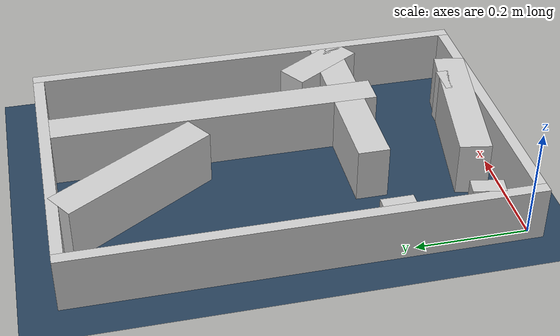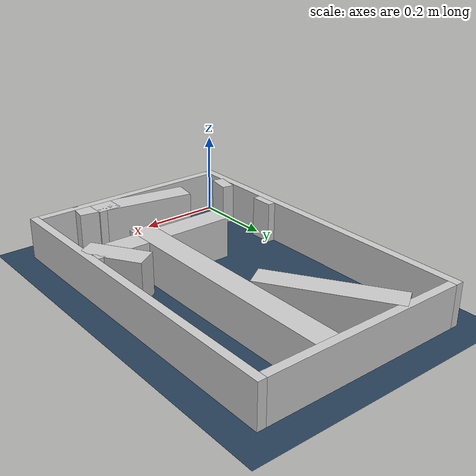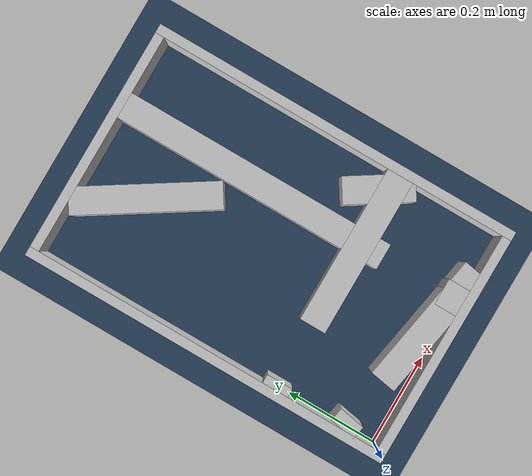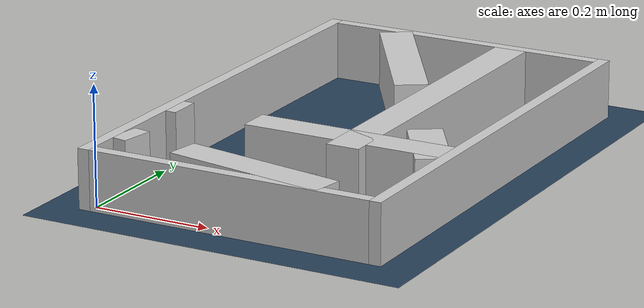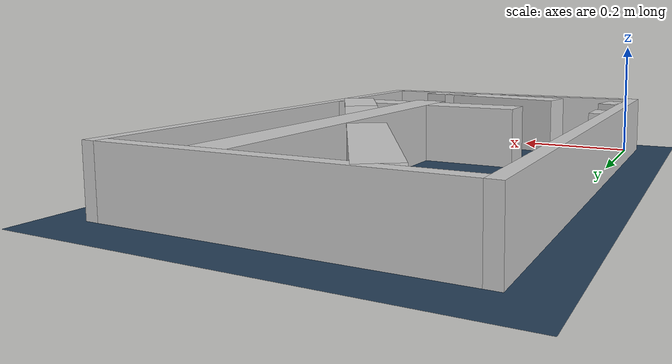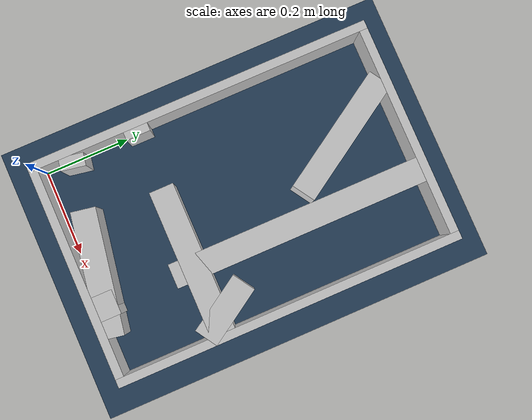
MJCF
<?xml version="1.0" ?>
<mujoco model="generated_real_template">
  <compiler angle="degree"/>
  <option timestep="0.002" integrator="implicitfast" iterations="100" cone="elliptic"/>
  <default>
    <geom density="1"/>
  </default>
  <asset>
    <texture builtin="gradient" height="3072" rgb1="0.3 0.5 0.7" rgb2="0 0 0" type="skybox" width="512"/>
    <texture builtin="checker" height="300" mark="edge" markrgb="0.8 0.8 0.8" name="groundplane" rgb1="0.2 0.3 0.4" rgb2="0.1 0.2 0.3" type="2d" width="300"/>
    <material name="groundplane" reflectance="0.2" texrepeat="5 5" texture="groundplane" texuniform="true"/>
  </asset>
  <worldbody>
    <light dir="0 0 -1" directional="true" pos="0 0 1.5"/>
    <geom name="floor" type="plane" condim="4" friction="0.5 0.005 0.001" material="groundplane" size="0 0 0.05"/>
    <body name="walls">
      <geom name="wall_boundary_left" type="box" condim="4" friction="1.0 0.005 0.0001" rgba="0.8 0.8 0.8 1" pos="-0.010000 0.387500 0.050000" euler="0 0 0.000000" size="0.010000 0.407500 0.050000"/>
      <geom name="wall_boundary_right" type="box" condim="4" friction="1.0 0.005 0.0001" rgba="0.8 0.8 0.8 1" pos="0.500000 0.387500 0.050000" euler="0 0 0.000000" size="0.010000 0.407500 0.050000"/>
      <geom name="wall_boundary_bottom" type="box" condim="4" friction="1.0 0.005 0.0001" rgba="0.8 0.8 0.8 1" pos="0.245000 -0.010000 0.050000" euler="0 0 0.000000" size="0.245000 0.010000 0.050000"/>
      <geom name="wall_boundary_top" type="box" condim="4" friction="1.0 0.005 0.0001" rgba="0.8 0.8 0.8 1" pos="0.245000 0.785000 0.050000" euler="0 0 0.000000" size="0.245000 0.010000 0.050000"/>
      <geom name="wall_inner_1_1" type="box" condim="4" friction="1.0 0.005 0.0001" rgba="0.8 0.8 0.8 1" pos="0.009493 0.233542 0.050000" euler="0 0 0.000000" size="0.009493 0.028500 0.050000"/>
      <geom name="wall_inner_1_2" type="box" condim="4" friction="1.0 0.005 0.0001" rgba="0.8 0.8 0.8 1" pos="0.318048 0.233542 0.050000" euler="0 0 0.000000" size="0.171952 0.028500 0.050000"/>
      <geom name="wall_inner_2_1" type="box" condim="4" friction="1.0 0.005 0.0001" rgba="0.8 0.8 0.8 1" pos="0.446467 0.257237 0.050000" euler="0 0 122.602484" size="0.073352 0.028500 0.050000"/>
      <geom name="wall_inner_2_2" type="box" condim="4" friction="1.0 0.005 0.0001" rgba="0.8 0.8 0.8 1" pos="0.198035 0.645663 0.050000" euler="0 0 122.602484" size="0.153529 0.028500 0.050000"/>
      <geom name="wall_inner_3_1" type="box" condim="4" friction="1.0 0.005 0.0001" rgba="0.8 0.8 0.8 1" pos="0.335074 0.023856 0.050000" euler="0 0 90.000000" size="0.023856 0.028500 0.050000"/>
      <geom name="wall_inner_3_2" type="box" condim="4" friction="1.0 0.005 0.0001" rgba="0.8 0.8 0.8 1" pos="0.335074 0.478179 0.050000" euler="0 0 90.000000" size="0.296821 0.028500 0.050000"/>
      <geom name="wall_inner_4_1" type="box" condim="4" friction="1.0 0.005 0.0001" rgba="0.8 0.8 0.8 1" pos="0.262934 0.032933 0.050000" euler="0 0 170.044500" size="0.143804 0.028500 0.050000"/>
      <geom name="wall_inner_4_2" type="box" condim="4" friction="1.0 0.005 0.0001" rgba="0.8 0.8 0.8 1" pos="0.014829 0.076482 0.050000" euler="0 0 170.044500" size="0.015055 0.028500 0.050000"/>
    </body>
  </worldbody>
</mujoco>
